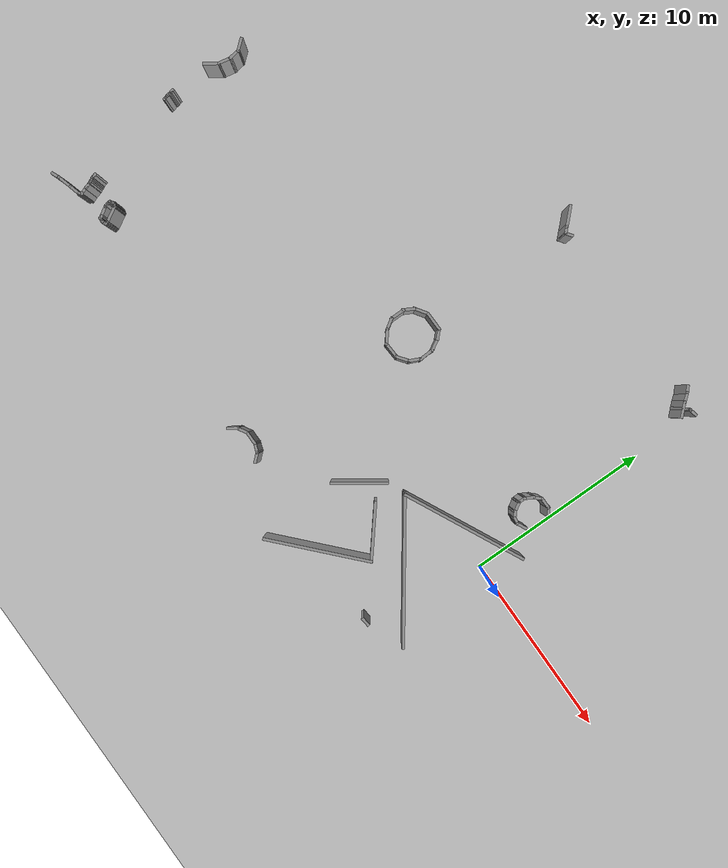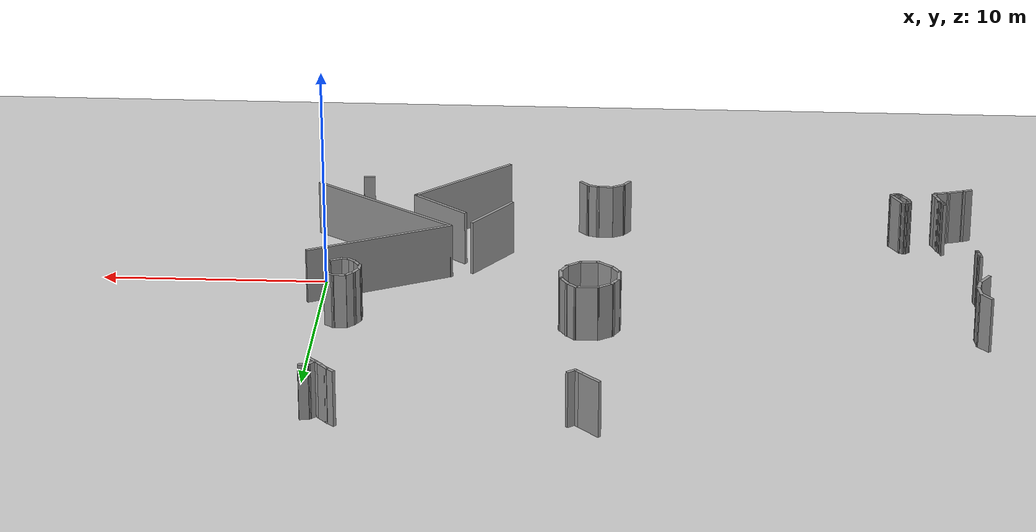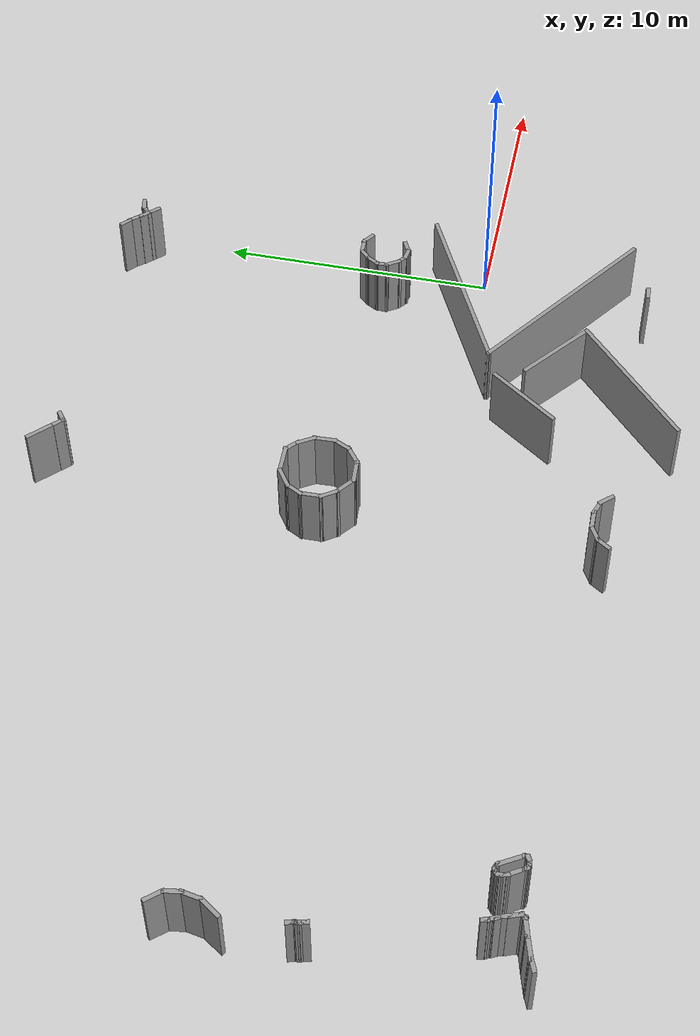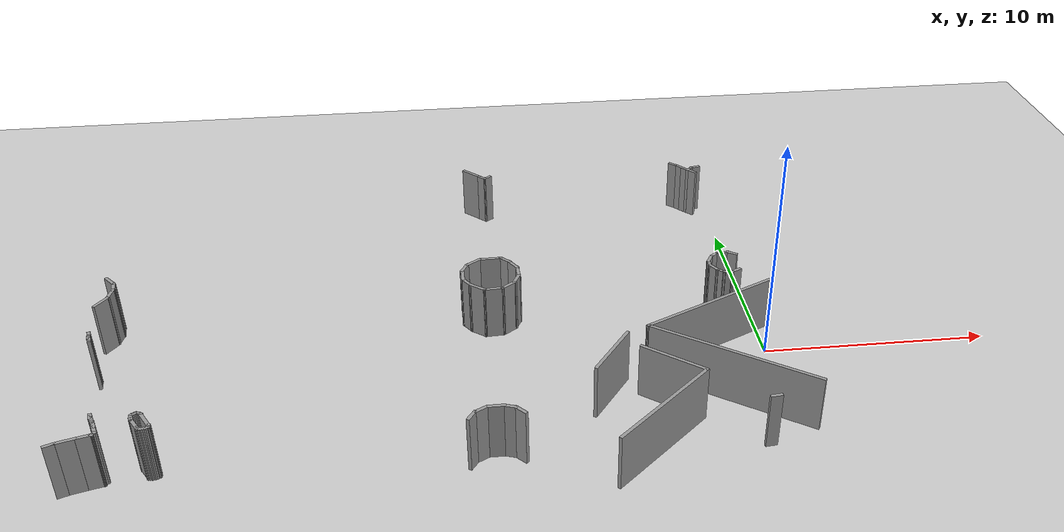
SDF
<sdf version="1.6">
 <world name="default">
  <model name="ground_plane">
   <static>1</static>
   <link name="link">
    <collision name="collision">
     <geometry><plane><normal>0 0 1</normal><size>100 100</size></plane></geometry>
     <surface><friction><ode><mu>100</mu><mu2>50</mu2></ode></friction></surface>
    </collision>
    <visual name="visual">
     <cast_shadows>0</cast_shadows>
     <geometry><plane><normal>0 0 1</normal><size>100 100</size></plane></geometry>
     <material>
      <script><uri>file://media/materials/scripts/gazebo.material</uri><name>Gazebo/Grey</name></script>
     </material>
    </visual>
   </link>
  </model>
  <model name="scene">
   <pose>1.8013 -1.70593 0 0 -0 0</pose>
   <link name="Wall_1002">
    <collision name="Wall_1002_Collision">
     <geometry><box><size>0.512288 0.15 2.5</size></box></geometry>
     <pose>0 0 1.25 0 -0 0</pose>
    </collision>
    <visual name="Wall_1002_Visual">
     <pose>0 0 1.25 0 -0 0</pose>
     <geometry><box><size>0.512288 0.15 2.5</size></box></geometry>
     <material>
      <script><uri>file://media/materials/scripts/gazebo.material</uri><name>Gazebo/Grey</name></script>
      <ambient>1 1 1 1</ambient>
     </material>
    </visual>
    <pose>-3.19308 -4.55312 0 0 -0 0.112678</pose>
   </link>
   <link name="Wall_1008">
    <collision name="Wall_1008_Collision">
     <geometry><box><size>0.651968 0.15 2.5</size></box></geometry>
     <pose>0 0 1.25 0 -0 0</pose>
    </collision>
    <visual name="Wall_1008_Visual">
     <pose>0 0 1.25 0 -0 0</pose>
     <geometry><box><size>0.651968 0.15 2.5</size></box></geometry>
     <material>
      <script><uri>file://media/materials/scripts/gazebo.material</uri><name>Gazebo/Grey</name></script>
      <ambient>1 1 1 1</ambient>
     </material>
    </visual>
    <pose>-2.86264 6.28005 0 0 -0 0.018912</pose>
   </link>
   <link name="Wall_1009">
    <collision name="Wall_1009_Collision">
     <geometry><box><size>0.560126 0.15 2.5</size></box></geometry>
     <pose>0 0 1.25 0 -0 0</pose>
    </collision>
    <visual name="Wall_1009_Visual">
     <pose>0 0 1.25 0 -0 0</pose>
     <geometry><box><size>0.560126 0.15 2.5</size></box></geometry>
     <material>
      <script><uri>file://media/materials/scripts/gazebo.material</uri><name>Gazebo/Grey</name></script>
      <ambient>1 1 1 1</ambient>
     </material>
    </visual>
    <pose>-2.45331 6.16705 0 0 0 -0.611634</pose>
   </link>
   <link name="Wall_1013">
    <collision name="Wall_1013_Collision">
     <geometry><box><size>0.595143 0.15 2.5</size></box></geometry>
     <pose>0 0 1.25 0 -0 0</pose>
    </collision>
    <visual name="Wall_1013_Visual">
     <pose>0 0 1.25 0 -0 0</pose>
     <geometry><box><size>0.595143 0.15 2.5</size></box></geometry>
     <material>
      <script><uri>file://media/materials/scripts/gazebo.material</uri><name>Gazebo/Grey</name></script>
      <ambient>1 1 1 1</ambient>
     </material>
    </visual>
    <pose>-2.62187 4.65356 0 0 0 -2.67745</pose>
   </link>
   <link name="Wall_1014">
    <collision name="Wall_1014_Collision">
     <geometry><box><size>0.497973 0.15 2.5</size></box></geometry>
     <pose>0 0 1.25 0 -0 0</pose>
    </collision>
    <visual name="Wall_1014_Visual">
     <pose>0 0 1.25 0 -0 0</pose>
     <geometry><box><size>0.497973 0.15 2.5</size></box></geometry>
     <material>
      <script><uri>file://media/materials/scripts/gazebo.material</uri><name>Gazebo/Grey</name></script>
      <ambient>1 1 1 1</ambient>
     </material>
    </visual>
    <pose>-2.98346 4.57976 0 0 -0 2.99259</pose>
   </link>
   <link name="Wall_1015">
    <collision name="Wall_1015_Collision">
     <geometry><box><size>0.476252 0.15 2.5</size></box></geometry>
     <pose>0 0 1.25 0 -0 0</pose>
    </collision>
    <visual name="Wall_1015_Visual">
     <pose>0 0 1.25 0 -0 0</pose>
     <geometry><box><size>0.476252 0.15 2.5</size></box></geometry>
     <material>
      <script><uri>file://media/materials/scripts/gazebo.material</uri><name>Gazebo/Grey</name></script>
      <ambient>1 1 1 1</ambient>
     </material>
    </visual>
    <pose>-3.28061 4.70079 0 0 -0 2.44473</pose>
   </link>
   <link name="Wall_1016">
    <collision name="Wall_1016_Collision">
     <geometry><box><size>0.634342 0.15 2.5</size></box></geometry>
     <pose>0 0 1.25 0 -0 0</pose>
    </collision>
    <visual name="Wall_1016_Visual">
     <pose>0 0 1.25 0 -0 0</pose>
     <geometry><box><size>0.634342 0.15 2.5</size></box></geometry>
     <material>
      <script><uri>file://media/materials/scripts/gazebo.material</uri><name>Gazebo/Grey</name></script>
      <ambient>1 1 1 1</ambient>
     </material>
    </visual>
    <pose>-3.54128 5.01225 0 0 -0 2.11837</pose>
   </link>
   <link name="Wall_1017">
    <collision name="Wall_1017_Collision">
     <geometry><box><size>0.505913 0.15 2.5</size></box></geometry>
     <pose>0 0 1.25 0 -0 0</pose>
    </collision>
    <visual name="Wall_1017_Visual">
     <pose>0 0 1.25 0 -0 0</pose>
     <geometry><box><size>0.505913 0.15 2.5</size></box></geometry>
     <material>
      <script><uri>file://media/materials/scripts/gazebo.material</uri><name>Gazebo/Grey</name></script>
      <ambient>1 1 1 1</ambient>
     </material>
    </visual>
    <pose>-3.67601 5.39697 0 0 -0 1.5661</pose>
   </link>
   <link name="Wall_1019">
    <collision name="Wall_1019_Collision">
     <geometry><box><size>0.587128 0.15 2.5</size></box></geometry>
     <pose>0 0 1.25 0 -0 0</pose>
    </collision>
    <visual name="Wall_1019_Visual">
     <pose>0 0 1.25 0 -0 0</pose>
     <geometry><box><size>0.587128 0.15 2.5</size></box></geometry>
     <material>
      <script><uri>file://media/materials/scripts/gazebo.material</uri><name>Gazebo/Grey</name></script>
      <ambient>1 1 1 1</ambient>
     </material>
    </visual>
    <pose>-3.56836 5.7751 0 0 -0 1.06017</pose>
   </link>
   <link name="Wall_1020">
    <collision name="Wall_1020_Collision">
     <geometry><box><size>0.536264 0.15 2.5</size></box></geometry>
     <pose>0 0 1.25 0 -0 0</pose>
    </collision>
    <visual name="Wall_1020_Visual">
     <pose>0 0 1.25 0 -0 0</pose>
     <geometry><box><size>0.536264 0.15 2.5</size></box></geometry>
     <material>
      <script><uri>file://media/materials/scripts/gazebo.material</uri><name>Gazebo/Grey</name></script>
      <ambient>1 1 1 1</ambient>
     </material>
    </visual>
    <pose>-3.32865 6.09652 0 0 -0 0.812245</pose>
   </link>
   <link name="Wall_1024">
    <collision name="Wall_1024_Collision">
     <geometry><box><size>1.09202 0.15 2.5</size></box></geometry>
     <pose>0 0 1.25 0 -0 0</pose>
    </collision>
    <visual name="Wall_1024_Visual">
     <pose>0 0 1.25 0 -0 0</pose>
     <geometry><box><size>1.09202 0.15 2.5</size></box></geometry>
     <material>
      <script><uri>file://media/materials/scripts/gazebo.material</uri><name>Gazebo/Grey</name></script>
      <ambient>1 1 1 1</ambient>
     </material>
    </visual>
    <pose>-13.5874 6.95876 0 0 -0 0.020155</pose>
   </link>
   <link name="Wall_1025">
    <collision name="Wall_1025_Collision">
     <geometry><box><size>0.652654 0.15 2.5</size></box></geometry>
     <pose>0 0 1.25 0 -0 0</pose>
    </collision>
    <visual name="Wall_1025_Visual">
     <pose>0 0 1.25 0 -0 0</pose>
     <geometry><box><size>0.652654 0.15 2.5</size></box></geometry>
     <material>
      <script><uri>file://media/materials/scripts/gazebo.material</uri><name>Gazebo/Grey</name></script>
      <ambient>1 1 1 1</ambient>
     </material>
    </visual>
    <pose>-12.9367 6.78315 0 0 0 -0.773619</pose>
   </link>
   <link name="Wall_1026">
    <collision name="Wall_1026_Collision">
     <geometry><box><size>0.767824 0.15 2.5</size></box></geometry>
     <pose>0 0 1.25 0 -0 0</pose>
    </collision>
    <visual name="Wall_1026_Visual">
     <pose>0 0 1.25 0 -0 0</pose>
     <geometry><box><size>0.767824 0.15 2.5</size></box></geometry>
     <material>
      <script><uri>file://media/materials/scripts/gazebo.material</uri><name>Gazebo/Grey</name></script>
      <ambient>1 1 1 1</ambient>
     </material>
    </visual>
    <pose>-12.6069 6.34298 0 0 0 -1.02827</pose>
   </link>
   <link name="Wall_1027">
    <collision name="Wall_1027_Collision">
     <geometry><box><size>0.886223 0.15 2.5</size></box></geometry>
     <pose>0 0 1.25 0 -0 0</pose>
    </collision>
    <visual name="Wall_1027_Visual">
     <pose>0 0 1.25 0 -0 0</pose>
     <geometry><box><size>0.886223 0.15 2.5</size></box></geometry>
     <material>
      <script><uri>file://media/materials/scripts/gazebo.material</uri><name>Gazebo/Grey</name></script>
      <ambient>1 1 1 1</ambient>
     </material>
    </visual>
    <pose>-12.4323 5.72012 0 0 0 -1.52984</pose>
   </link>
   <link name="Wall_1028">
    <collision name="Wall_1028_Collision">
     <geometry><box><size>0.730781 0.15 2.5</size></box></geometry>
     <pose>0 0 1.25 0 -0 0</pose>
    </collision>
    <visual name="Wall_1028_Visual">
     <pose>0 0 1.25 0 -0 0</pose>
     <geometry><box><size>0.730781 0.15 2.5</size></box></geometry>
     <material>
      <script><uri>file://media/materials/scripts/gazebo.material</uri><name>Gazebo/Grey</name></script>
      <ambient>1 1 1 1</ambient>
     </material>
    </visual>
    <pose>-12.5504 5.08958 0 0 0 -2.01077</pose>
   </link>
   <link name="Wall_1029">
    <collision name="Wall_1029_Collision">
     <geometry><box><size>0.844092 0.15 2.5</size></box></geometry>
     <pose>0 0 1.25 0 -0 0</pose>
    </collision>
    <visual name="Wall_1029_Visual">
     <pose>0 0 1.25 0 -0 0</pose>
     <geometry><box><size>0.844092 0.15 2.5</size></box></geometry>
     <material>
      <script><uri>file://media/materials/scripts/gazebo.material</uri><name>Gazebo/Grey</name></script>
      <ambient>1 1 1 1</ambient>
     </material>
    </visual>
    <pose>-12.9416 4.61776 0 0 0 -2.49497</pose>
   </link>
   <link name="Wall_1030">
    <collision name="Wall_1030_Collision">
     <geometry><box><size>0.938706 0.15 2.5</size></box></geometry>
     <pose>0 0 1.25 0 -0 0</pose>
    </collision>
    <visual name="Wall_1030_Visual">
     <pose>0 0 1.25 0 -0 0</pose>
     <geometry><box><size>0.938706 0.15 2.5</size></box></geometry>
     <material>
      <script><uri>file://media/materials/scripts/gazebo.material</uri><name>Gazebo/Grey</name></script>
      <ambient>1 1 1 1</ambient>
     </material>
    </visual>
    <pose>-13.6218 4.38521 0 0 0 -3.08209</pose>
   </link>
   <link name="Wall_1031">
    <collision name="Wall_1031_Collision">
     <geometry><box><size>0.896759 0.15 2.5</size></box></geometry>
     <pose>0 0 1.25 0 -0 0</pose>
    </collision>
    <visual name="Wall_1031_Visual">
     <pose>0 0 1.25 0 -0 0</pose>
     <geometry><box><size>0.896759 0.15 2.5</size></box></geometry>
     <material>
      <script><uri>file://media/materials/scripts/gazebo.material</uri><name>Gazebo/Grey</name></script>
      <ambient>1 1 1 1</ambient>
     </material>
    </visual>
    <pose>-14.317 4.59433 0 0 -0 2.4692</pose>
   </link>
   <link name="Wall_1032">
    <collision name="Wall_1032_Collision">
     <geometry><box><size>0.739141 0.15 2.5</size></box></geometry>
     <pose>0 0 1.25 0 -0 0</pose>
    </collision>
    <visual name="Wall_1032_Visual">
     <pose>0 0 1.25 0 -0 0</pose>
     <geometry><box><size>0.739141 0.15 2.5</size></box></geometry>
     <material>
      <script><uri>file://media/materials/scripts/gazebo.material</uri><name>Gazebo/Grey</name></script>
      <ambient>1 1 1 1</ambient>
     </material>
    </visual>
    <pose>-14.7794 5.07369 0 0 -0 2.14828</pose>
   </link>
   <link name="Wall_1033">
    <collision name="Wall_1033_Collision">
     <geometry><box><size>0.871473 0.15 2.5</size></box></geometry>
     <pose>0 0 1.25 0 -0 0</pose>
    </collision>
    <visual name="Wall_1033_Visual">
     <pose>0 0 1.25 0 -0 0</pose>
     <geometry><box><size>0.871473 0.15 2.5</size></box></geometry>
     <material>
      <script><uri>file://media/materials/scripts/gazebo.material</uri><name>Gazebo/Grey</name></script>
      <ambient>1 1 1 1</ambient>
     </material>
    </visual>
    <pose>-14.935 5.68121 0 0 -0 1.58254</pose>
   </link>
   <link name="Wall_1034">
    <collision name="Wall_1034_Collision">
     <geometry><box><size>0.716222 0.15 2.5</size></box></geometry>
     <pose>0 0 1.25 0 -0 0</pose>
    </collision>
    <visual name="Wall_1034_Visual">
     <pose>0 0 1.25 0 -0 0</pose>
     <geometry><box><size>0.716222 0.15 2.5</size></box></geometry>
     <material>
      <script><uri>file://media/materials/scripts/gazebo.material</uri><name>Gazebo/Grey</name></script>
      <ambient>1 1 1 1</ambient>
     </material>
    </visual>
    <pose>-14.8147 6.29132 0 0 -0 1.07786</pose>
   </link>
   <link name="Wall_1035">
    <collision name="Wall_1035_Collision">
     <geometry><box><size>0.862117 0.15 2.5</size></box></geometry>
     <pose>0 0 1.25 0 -0 0</pose>
    </collision>
    <visual name="Wall_1035_Visual">
     <pose>0 0 1.25 0 -0 0</pose>
     <geometry><box><size>0.862117 0.15 2.5</size></box></geometry>
     <material>
      <script><uri>file://media/materials/scripts/gazebo.material</uri><name>Gazebo/Grey</name></script>
      <ambient>1 1 1 1</ambient>
     </material>
    </visual>
    <pose>-14.3968 6.74241 0 0 -0 0.602178</pose>
   </link>
   <link name="Wall_1039">
    <collision name="Wall_1039_Collision">
     <geometry><box><size>0.75 0.15 2.5</size></box></geometry>
     <pose>0 0 1.25 0 -0 0</pose>
    </collision>
    <visual name="Wall_1039_Visual">
     <pose>0 0 1.25 0 -0 0</pose>
     <geometry><box><size>0.75 0.15 2.5</size></box></geometry>
     <material>
      <script><uri>file://media/materials/scripts/gazebo.material</uri><name>Gazebo/Grey</name></script>
      <ambient>1 1 1 1</ambient>
     </material>
    </visual>
    <pose>-14.0601 -3.93279 0 0 -0 0</pose>
   </link>
   <link name="Wall_1040">
    <collision name="Wall_1040_Collision">
     <geometry><box><size>0.610594 0.15 2.5</size></box></geometry>
     <pose>0 0 1.25 0 -0 0</pose>
    </collision>
    <visual name="Wall_1040_Visual">
     <pose>0 0 1.25 0 -0 0</pose>
     <geometry><box><size>0.610594 0.15 2.5</size></box></geometry>
     <material>
      <script><uri>file://media/materials/scripts/gazebo.material</uri><name>Gazebo/Grey</name></script>
      <ambient>1 1 1 1</ambient>
     </material>
    </visual>
    <pose>-13.5436 -4.01131 0 0 0 -0.347913</pose>
   </link>
   <link name="Wall_1041">
    <collision name="Wall_1041_Collision">
     <geometry><box><size>0.643015 0.15 2.5</size></box></geometry>
     <pose>0 0 1.25 0 -0 0</pose>
    </collision>
    <visual name="Wall_1041_Visual">
     <pose>0 0 1.25 0 -0 0</pose>
     <geometry><box><size>0.643015 0.15 2.5</size></box></geometry>
     <material>
      <script><uri>file://media/materials/scripts/gazebo.material</uri><name>Gazebo/Grey</name></script>
      <ambient>1 1 1 1</ambient>
     </material>
    </visual>
    <pose>-13.1518 -4.27225 0 0 0 -0.833122</pose>
   </link>
   <link name="Wall_1053">
    <collision name="Wall_1053_Collision">
     <geometry><box><size>0.626331 0.15 2.5</size></box></geometry>
     <pose>0 0 1.25 0 -0 0</pose>
    </collision>
    <visual name="Wall_1053_Visual">
     <pose>0 0 1.25 0 -0 0</pose>
     <geometry><box><size>0.626331 0.15 2.5</size></box></geometry>
     <material>
      <script><uri>file://media/materials/scripts/gazebo.material</uri><name>Gazebo/Grey</name></script>
      <ambient>1 1 1 1</ambient>
     </material>
    </visual>
    <pose>-15.0325 -4.40458 0 0 -0 0.989265</pose>
   </link>
   <link name="Wall_1054">
    <collision name="Wall_1054_Collision">
     <geometry><box><size>0.644301 0.15 2.5</size></box></geometry>
     <pose>0 0 1.25 0 -0 0</pose>
    </collision>
    <visual name="Wall_1054_Visual">
     <pose>0 0 1.25 0 -0 0</pose>
     <geometry><box><size>0.644301 0.15 2.5</size></box></geometry>
     <material>
      <script><uri>file://media/materials/scripts/gazebo.material</uri><name>Gazebo/Grey</name></script>
      <ambient>1 1 1 1</ambient>
     </material>
    </visual>
    <pose>-14.6781 -4.08216 0 0 -0 0.522787</pose>
   </link>
   <link name="Wall_1079">
    <collision name="Wall_1079_Collision">
     <geometry><box><size>0.762468 0.15 2.5</size></box></geometry>
     <pose>0 0 1.25 0 -0 0</pose>
    </collision>
    <visual name="Wall_1079_Visual">
     <pose>0 0 1.25 0 -0 0</pose>
     <geometry><box><size>0.762468 0.15 2.5</size></box></geometry>
     <material>
      <script><uri>file://media/materials/scripts/gazebo.material</uri><name>Gazebo/Grey</name></script>
      <ambient>1 1 1 1</ambient>
     </material>
    </visual>
    <pose>-30.6052 7.00854 0 0 0 -0.870597</pose>
   </link>
   <link name="Wall_1080">
    <collision name="Wall_1080_Collision">
     <geometry><box><size>0.690732 0.15 2.5</size></box></geometry>
     <pose>0 0 1.25 0 -0 0</pose>
    </collision>
    <visual name="Wall_1080_Visual">
     <pose>0 0 1.25 0 -0 0</pose>
     <geometry><box><size>0.690732 0.15 2.5</size></box></geometry>
     <material>
      <script><uri>file://media/materials/scripts/gazebo.material</uri><name>Gazebo/Grey</name></script>
      <ambient>1 1 1 1</ambient>
     </material>
    </visual>
    <pose>-30.3661 6.49054 0 0 0 -1.41585</pose>
   </link>
   <link name="Wall_1081">
    <collision name="Wall_1081_Collision">
     <geometry><box><size>0.780619 0.15 2.5</size></box></geometry>
     <pose>0 0 1.25 0 -0 0</pose>
    </collision>
    <visual name="Wall_1081_Visual">
     <pose>0 0 1.25 0 -0 0</pose>
     <geometry><box><size>0.780619 0.15 2.5</size></box></geometry>
     <material>
      <script><uri>file://media/materials/scripts/gazebo.material</uri><name>Gazebo/Grey</name></script>
      <ambient>1 1 1 1</ambient>
     </material>
    </visual>
    <pose>-30.3826 5.93021 0 0 0 -1.75634</pose>
   </link>
   <link name="Wall_1082">
    <collision name="Wall_1082_Collision">
     <geometry><box><size>0.896261 0.15 2.5</size></box></geometry>
     <pose>0 0 1.25 0 -0 0</pose>
    </collision>
    <visual name="Wall_1082_Visual">
     <pose>0 0 1.25 0 -0 0</pose>
     <geometry><box><size>0.896261 0.15 2.5</size></box></geometry>
     <material>
      <script><uri>file://media/materials/scripts/gazebo.material</uri><name>Gazebo/Grey</name></script>
      <ambient>1 1 1 1</ambient>
     </material>
    </visual>
    <pose>-30.6504 5.295 0 0 0 -2.16766</pose>
   </link>
   <link name="Wall_449">
    <collision name="Wall_449_Collision">
     <geometry><box><size>0.50892 0.15 2.5</size></box></geometry>
     <pose>0 0 1.25 0 -0 0</pose>
    </collision>
    <visual name="Wall_449_Visual">
     <pose>0 0 1.25 0 -0 0</pose>
     <geometry><box><size>0.50892 0.15 2.5</size></box></geometry>
     <material>
      <script><uri>file://media/materials/scripts/gazebo.material</uri><name>Gazebo/Grey</name></script>
      <ambient>1 1 1 1</ambient>
     </material>
    </visual>
    <pose>-30.5724 -4.35197 0 0 -0 0.390424</pose>
   </link>
   <link name="Wall_450">
    <collision name="Wall_450_Collision">
     <geometry><box><size>0.885292 0.15 2.5</size></box></geometry>
     <pose>0 0 1.25 0 -0 0</pose>
    </collision>
    <visual name="Wall_450_Visual">
     <pose>0 0 1.25 0 -0 0</pose>
     <geometry><box><size>0.885292 0.15 2.5</size></box></geometry>
     <material>
      <script><uri>file://media/materials/scripts/gazebo.material</uri><name>Gazebo/Grey</name></script>
      <ambient>1 1 1 1</ambient>
     </material>
    </visual>
    <pose>-30.0637 -4.17889 0 0 -0 0.289018</pose>
   </link>
   <link name="Wall_452">
    <collision name="Wall_452_Collision">
     <geometry><box><size>0.15 0.15 2.5</size></box></geometry>
     <pose>0 0 1.25 0 -0 0</pose>
    </collision>
    <visual name="Wall_452_Visual">
     <pose>0 0 1.25 0 -0 0</pose>
     <geometry><box><size>0.15 0.15 2.5</size></box></geometry>
     <material>
      <script><uri>file://media/materials/scripts/gazebo.material</uri><name>Gazebo/Grey</name></script>
      <ambient>1 1 1 1</ambient>
     </material>
    </visual>
    <pose>-29.1317 -3.91882 0 0 -0 0</pose>
   </link>
   <link name="Wall_454">
    <collision name="Wall_454_Collision">
     <geometry><box><size>0.75 0.15 2.5</size></box></geometry>
     <pose>0 0 1.25 0 -0 0</pose>
    </collision>
    <visual name="Wall_454_Visual">
     <pose>0 0 1.25 0 -0 0</pose>
     <geometry><box><size>0.75 0.15 2.5</size></box></geometry>
     <material>
      <script><uri>file://media/materials/scripts/gazebo.material</uri><name>Gazebo/Grey</name></script>
      <ambient>1 1 1 1</ambient>
     </material>
    </visual>
    <pose>-29.4215 -3.99646 0 0 -0 0.261799</pose>
   </link>
   <link name="Wall_474">
    <collision name="Wall_474_Collision">
     <geometry><box><size>0.294371 0.15 2.5</size></box></geometry>
     <pose>0 0 1.25 0 -0 0</pose>
    </collision>
    <visual name="Wall_474_Visual">
     <pose>0 0 1.25 0 -0 0</pose>
     <geometry><box><size>0.294371 0.15 2.5</size></box></geometry>
     <material>
      <script><uri>file://media/materials/scripts/gazebo.material</uri><name>Gazebo/Grey</name></script>
      <ambient>1 1 1 1</ambient>
     </material>
    </visual>
    <pose>-29.0922 -3.85842 0 0 -0 0.991292</pose>
   </link>
   <link name="Wall_478">
    <collision name="Wall_478_Collision">
     <geometry><box><size>0.25 0.15 2.5</size></box></geometry>
     <pose>0 0 1.25 0 -0 0</pose>
    </collision>
    <visual name="Wall_478_Visual">
     <pose>0 0 1.25 0 -0 0</pose>
     <geometry><box><size>0.25 0.15 2.5</size></box></geometry>
     <material>
      <script><uri>file://media/materials/scripts/gazebo.material</uri><name>Gazebo/Grey</name></script>
      <ambient>1 1 1 1</ambient>
     </material>
    </visual>
    <pose>-29.4401 -2.7414 0 0 0 -1.309</pose>
   </link>
   <link name="Wall_479">
    <collision name="Wall_479_Collision">
     <geometry><box><size>0.25 0.15 2.5</size></box></geometry>
     <pose>0 0 1.25 0 -0 0</pose>
    </collision>
    <visual name="Wall_479_Visual">
     <pose>0 0 1.25 0 -0 0</pose>
     <geometry><box><size>0.25 0.15 2.5</size></box></geometry>
     <material>
      <script><uri>file://media/materials/scripts/gazebo.material</uri><name>Gazebo/Grey</name></script>
      <ambient>1 1 1 1</ambient>
     </material>
    </visual>
    <pose>-29.4142 -2.83799 0 0 0 -1.309</pose>
   </link>
   <link name="Wall_480">
    <collision name="Wall_480_Collision">
     <geometry><box><size>0.25 0.15 2.5</size></box></geometry>
     <pose>0 0 1.25 0 -0 0</pose>
    </collision>
    <visual name="Wall_480_Visual">
     <pose>0 0 1.25 0 -0 0</pose>
     <geometry><box><size>0.25 0.15 2.5</size></box></geometry>
     <material>
      <script><uri>file://media/materials/scripts/gazebo.material</uri><name>Gazebo/Grey</name></script>
      <ambient>1 1 1 1</ambient>
     </material>
    </visual>
    <pose>-29.3762 -2.92959 0 0 0 -1.0472</pose>
   </link>
   <link name="Wall_481">
    <collision name="Wall_481_Collision">
     <geometry><box><size>0.255561 0.15 2.5</size></box></geometry>
     <pose>0 0 1.25 0 -0 0</pose>
    </collision>
    <visual name="Wall_481_Visual">
     <pose>0 0 1.25 0 -0 0</pose>
     <geometry><box><size>0.255561 0.15 2.5</size></box></geometry>
     <material>
      <script><uri>file://media/materials/scripts/gazebo.material</uri><name>Gazebo/Grey</name></script>
      <ambient>1 1 1 1</ambient>
     </material>
    </visual>
    <pose>-29.3299 -3.02118 0 0 0 -1.15562</pose>
   </link>
   <link name="Wall_482">
    <collision name="Wall_482_Collision">
     <geometry><box><size>0.259196 0.15 2.5</size></box></geometry>
     <pose>0 0 1.25 0 -0 0</pose>
    </collision>
    <visual name="Wall_482_Visual">
     <pose>0 0 1.25 0 -0 0</pose>
     <geometry><box><size>0.259196 0.15 2.5</size></box></geometry>
     <material>
      <script><uri>file://media/materials/scripts/gazebo.material</uri><name>Gazebo/Grey</name></script>
      <ambient>1 1 1 1</ambient>
     </material>
    </visual>
    <pose>-29.2915 -3.11778 0 0 0 -1.0856</pose>
   </link>
   <link name="Wall_483">
    <collision name="Wall_483_Collision">
     <geometry><box><size>0.451896 0.15 2.5</size></box></geometry>
     <pose>0 0 1.25 0 -0 0</pose>
    </collision>
    <visual name="Wall_483_Visual">
     <pose>0 0 1.25 0 -0 0</pose>
     <geometry><box><size>0.451896 0.15 2.5</size></box></geometry>
     <material>
      <script><uri>file://media/materials/scripts/gazebo.material</uri><name>Gazebo/Grey</name></script>
      <ambient>1 1 1 1</ambient>
     </material>
    </visual>
    <pose>-29.2124 -3.31006 0 0 0 -1.26604</pose>
   </link>
   <link name="Wall_484">
    <collision name="Wall_484_Collision">
     <geometry><box><size>0.518128 0.15 2.5</size></box></geometry>
     <pose>0 0 1.25 0 -0 0</pose>
    </collision>
    <visual name="Wall_484_Visual">
     <pose>0 0 1.25 0 -0 0</pose>
     <geometry><box><size>0.518128 0.15 2.5</size></box></geometry>
     <material>
      <script><uri>file://media/materials/scripts/gazebo.material</uri><name>Gazebo/Grey</name></script>
      <ambient>1 1 1 1</ambient>
     </material>
    </visual>
    <pose>-29.1099 -3.62604 0 0 0 -1.20642</pose>
   </link>
   <link name="Wall_486">
    <collision name="Wall_486_Collision">
     <geometry><box><size>0.25 0.15 2.5</size></box></geometry>
     <pose>0 0 1.25 0 -0 0</pose>
    </collision>
    <visual name="Wall_486_Visual">
     <pose>0 0 1.25 0 -0 0</pose>
     <geometry><box><size>0.25 0.15 2.5</size></box></geometry>
     <material>
      <script><uri>file://media/materials/scripts/gazebo.material</uri><name>Gazebo/Grey</name></script>
      <ambient>1 1 1 1</ambient>
     </material>
    </visual>
    <pose>-27.5329 -3.69645 0 0 0 -1.0472</pose>
   </link>
   <link name="Wall_487">
    <collision name="Wall_487_Collision">
     <geometry><box><size>0.25 0.15 2.5</size></box></geometry>
     <pose>0 0 1.25 0 -0 0</pose>
    </collision>
    <visual name="Wall_487_Visual">
     <pose>0 0 1.25 0 -0 0</pose>
     <geometry><box><size>0.25 0.15 2.5</size></box></geometry>
     <material>
      <script><uri>file://media/materials/scripts/gazebo.material</uri><name>Gazebo/Grey</name></script>
      <ambient>1 1 1 1</ambient>
     </material>
    </visual>
    <pose>-27.4596 -3.7527 0 0 0 -0.261799</pose>
   </link>
   <link name="Wall_488">
    <collision name="Wall_488_Collision">
     <geometry><box><size>0.25 0.15 2.5</size></box></geometry>
     <pose>0 0 1.25 0 -0 0</pose>
    </collision>
    <visual name="Wall_488_Visual">
     <pose>0 0 1.25 0 -0 0</pose>
     <geometry><box><size>0.25 0.15 2.5</size></box></geometry>
     <material>
      <script><uri>file://media/materials/scripts/gazebo.material</uri><name>Gazebo/Grey</name></script>
      <ambient>1 1 1 1</ambient>
     </material>
    </visual>
    <pose>-27.3613 -3.76564 0 0 -0 0</pose>
   </link>
   <link name="Wall_489">
    <collision name="Wall_489_Collision">
     <geometry><box><size>0.25 0.15 2.5</size></box></geometry>
     <pose>0 0 1.25 0 -0 0</pose>
    </collision>
    <visual name="Wall_489_Visual">
     <pose>0 0 1.25 0 -0 0</pose>
     <geometry><box><size>0.25 0.15 2.5</size></box></geometry>
     <material>
      <script><uri>file://media/materials/scripts/gazebo.material</uri><name>Gazebo/Grey</name></script>
      <ambient>1 1 1 1</ambient>
     </material>
    </visual>
    <pose>-27.263 -3.7527 0 0 -0 0.261799</pose>
   </link>
   <link name="Wall_490">
    <collision name="Wall_490_Collision">
     <geometry><box><size>0.25 0.15 2.5</size></box></geometry>
     <pose>0 0 1.25 0 -0 0</pose>
    </collision>
    <visual name="Wall_490_Visual">
     <pose>0 0 1.25 0 -0 0</pose>
     <geometry><box><size>0.25 0.15 2.5</size></box></geometry>
     <material>
      <script><uri>file://media/materials/scripts/gazebo.material</uri><name>Gazebo/Grey</name></script>
      <ambient>1 1 1 1</ambient>
     </material>
    </visual>
    <pose>-27.1715 -3.71475 0 0 -0 0.523599</pose>
   </link>
   <link name="Wall_491">
    <collision name="Wall_491_Collision">
     <geometry><box><size>0.25 0.15 2.5</size></box></geometry>
     <pose>0 0 1.25 0 -0 0</pose>
    </collision>
    <visual name="Wall_491_Visual">
     <pose>0 0 1.25 0 -0 0</pose>
     <geometry><box><size>0.25 0.15 2.5</size></box></geometry>
     <material>
      <script><uri>file://media/materials/scripts/gazebo.material</uri><name>Gazebo/Grey</name></script>
      <ambient>1 1 1 1</ambient>
     </material>
    </visual>
    <pose>-27.1281 -3.63976 0 0 -0 1.5708</pose>
   </link>
   <link name="Wall_492">
    <collision name="Wall_492_Collision">
     <geometry><box><size>1 0.15 2.5</size></box></geometry>
     <pose>0 0 1.25 0 -0 0</pose>
    </collision>
    <visual name="Wall_492_Visual">
     <pose>0 0 1.25 0 -0 0</pose>
     <geometry><box><size>1 0.15 2.5</size></box></geometry>
     <material>
      <script><uri>file://media/materials/scripts/gazebo.material</uri><name>Gazebo/Grey</name></script>
      <ambient>1 1 1 1</ambient>
     </material>
    </visual>
    <pose>-27.3406 -3.22169 0 0 -0 2.0944</pose>
   </link>
   <link name="Wall_493">
    <collision name="Wall_493_Collision">
     <geometry><box><size>0.25 0.15 2.5</size></box></geometry>
     <pose>0 0 1.25 0 -0 0</pose>
    </collision>
    <visual name="Wall_493_Visual">
     <pose>0 0 1.25 0 -0 0</pose>
     <geometry><box><size>0.25 0.15 2.5</size></box></geometry>
     <material>
      <script><uri>file://media/materials/scripts/gazebo.material</uri><name>Gazebo/Grey</name></script>
      <ambient>1 1 1 1</ambient>
     </material>
    </visual>
    <pose>-27.5964 -2.82863 0 0 -0 2.61799</pose>
   </link>
   <link name="Wall_494">
    <collision name="Wall_494_Collision">
     <geometry><box><size>0.25 0.15 2.5</size></box></geometry>
     <pose>0 0 1.25 0 -0 0</pose>
    </collision>
    <visual name="Wall_494_Visual">
     <pose>0 0 1.25 0 -0 0</pose>
     <geometry><box><size>0.25 0.15 2.5</size></box></geometry>
     <material>
      <script><uri>file://media/materials/scripts/gazebo.material</uri><name>Gazebo/Grey</name></script>
      <ambient>1 1 1 1</ambient>
     </material>
    </visual>
    <pose>-27.688 -2.79069 0 0 -0 2.87979</pose>
   </link>
   <link name="Wall_495">
    <collision name="Wall_495_Collision">
     <geometry><box><size>0.25 0.15 2.5</size></box></geometry>
     <pose>0 0 1.25 0 -0 0</pose>
    </collision>
    <visual name="Wall_495_Visual">
     <pose>0 0 1.25 0 -0 0</pose>
     <geometry><box><size>0.25 0.15 2.5</size></box></geometry>
     <material>
      <script><uri>file://media/materials/scripts/gazebo.material</uri><name>Gazebo/Grey</name></script>
      <ambient>1 1 1 1</ambient>
     </material>
    </visual>
    <pose>-27.7796 -2.80275 0 0 0 -2.61799</pose>
   </link>
   <link name="Wall_496">
    <collision name="Wall_496_Collision">
     <geometry><box><size>0.25 0.15 2.5</size></box></geometry>
     <pose>0 0 1.25 0 -0 0</pose>
    </collision>
    <visual name="Wall_496_Visual">
     <pose>0 0 1.25 0 -0 0</pose>
     <geometry><box><size>0.25 0.15 2.5</size></box></geometry>
     <material>
      <script><uri>file://media/materials/scripts/gazebo.material</uri><name>Gazebo/Grey</name></script>
      <ambient>1 1 1 1</ambient>
     </material>
    </visual>
    <pose>-27.8583 -2.86311 0 0 0 -2.35619</pose>
   </link>
   <link name="Wall_497">
    <collision name="Wall_497_Collision">
     <geometry><box><size>0.25 0.15 2.5</size></box></geometry>
     <pose>0 0 1.25 0 -0 0</pose>
    </collision>
    <visual name="Wall_497_Visual">
     <pose>0 0 1.25 0 -0 0</pose>
     <geometry><box><size>0.25 0.15 2.5</size></box></geometry>
     <material>
      <script><uri>file://media/materials/scripts/gazebo.material</uri><name>Gazebo/Grey</name></script>
      <ambient>1 1 1 1</ambient>
     </material>
    </visual>
    <pose>-27.8937 -2.94846 0 0 0 -1.5708</pose>
   </link>
   <link name="Wall_498">
    <collision name="Wall_498_Collision">
     <geometry><box><size>0.25 0.15 2.5</size></box></geometry>
     <pose>0 0 1.25 0 -0 0</pose>
    </collision>
    <visual name="Wall_498_Visual">
     <pose>0 0 1.25 0 -0 0</pose>
     <geometry><box><size>0.25 0.15 2.5</size></box></geometry>
     <material>
      <script><uri>file://media/materials/scripts/gazebo.material</uri><name>Gazebo/Grey</name></script>
      <ambient>1 1 1 1</ambient>
     </material>
    </visual>
    <pose>-27.8807 -3.04676 0 0 0 -1.309</pose>
   </link>
   <link name="Wall_499">
    <collision name="Wall_499_Collision">
     <geometry><box><size>0.25 0.15 2.5</size></box></geometry>
     <pose>0 0 1.25 0 -0 0</pose>
    </collision>
    <visual name="Wall_499_Visual">
     <pose>0 0 1.25 0 -0 0</pose>
     <geometry><box><size>0.25 0.15 2.5</size></box></geometry>
     <material>
      <script><uri>file://media/materials/scripts/gazebo.material</uri><name>Gazebo/Grey</name></script>
      <ambient>1 1 1 1</ambient>
     </material>
    </visual>
    <pose>-27.8548 -3.14335 0 0 0 -1.309</pose>
   </link>
   <link name="Wall_500">
    <collision name="Wall_500_Collision">
     <geometry><box><size>0.691866 0.15 2.5</size></box></geometry>
     <pose>0 0 1.25 0 -0 0</pose>
    </collision>
    <visual name="Wall_500_Visual">
     <pose>0 0 1.25 0 -0 0</pose>
     <geometry><box><size>0.691866 0.15 2.5</size></box></geometry>
     <material>
      <script><uri>file://media/materials/scripts/gazebo.material</uri><name>Gazebo/Grey</name></script>
      <ambient>1 1 1 1</ambient>
     </material>
    </visual>
    <pose>-27.6999 -3.4224 0 0 0 -1.01921</pose>
   </link>
   <link name="Wall_523">
    <collision name="Wall_523_Collision">
     <geometry><box><size>0.25 0.15 2.5</size></box></geometry>
     <pose>0 0 1.25 0 -0 0</pose>
    </collision>
    <visual name="Wall_523_Visual">
     <pose>0 0 1.25 0 -0 0</pose>
     <geometry><box><size>0.25 0.15 2.5</size></box></geometry>
     <material>
      <script><uri>file://media/materials/scripts/gazebo.material</uri><name>Gazebo/Grey</name></script>
      <ambient>1 1 1 1</ambient>
     </material>
    </visual>
    <pose>-30.6613 2.88292 0 0 0 -1.309</pose>
   </link>
   <link name="Wall_524">
    <collision name="Wall_524_Collision">
     <geometry><box><size>0.25 0.15 2.5</size></box></geometry>
     <pose>0 0 1.25 0 -0 0</pose>
    </collision>
    <visual name="Wall_524_Visual">
     <pose>0 0 1.25 0 -0 0</pose>
     <geometry><box><size>0.25 0.15 2.5</size></box></geometry>
     <material>
      <script><uri>file://media/materials/scripts/gazebo.material</uri><name>Gazebo/Grey</name></script>
      <ambient>1 1 1 1</ambient>
     </material>
    </visual>
    <pose>-30.6354 2.78633 0 0 0 -1.309</pose>
   </link>
   <link name="Wall_525">
    <collision name="Wall_525_Collision">
     <geometry><box><size>0.25 0.15 2.5</size></box></geometry>
     <pose>0 0 1.25 0 -0 0</pose>
    </collision>
    <visual name="Wall_525_Visual">
     <pose>0 0 1.25 0 -0 0</pose>
     <geometry><box><size>0.25 0.15 2.5</size></box></geometry>
     <material>
      <script><uri>file://media/materials/scripts/gazebo.material</uri><name>Gazebo/Grey</name></script>
      <ambient>1 1 1 1</ambient>
     </material>
    </visual>
    <pose>-30.6225 2.68803 0 0 0 -1.5708</pose>
   </link>
   <link name="Wall_526">
    <collision name="Wall_526_Collision">
     <geometry><box><size>0.25 0.15 2.5</size></box></geometry>
     <pose>0 0 1.25 0 -0 0</pose>
    </collision>
    <visual name="Wall_526_Visual">
     <pose>0 0 1.25 0 -0 0</pose>
     <geometry><box><size>0.25 0.15 2.5</size></box></geometry>
     <material>
      <script><uri>file://media/materials/scripts/gazebo.material</uri><name>Gazebo/Grey</name></script>
      <ambient>1 1 1 1</ambient>
     </material>
    </visual>
    <pose>-30.6095 2.58974 0 0 0 -1.309</pose>
   </link>
   <link name="Wall_527">
    <collision name="Wall_527_Collision">
     <geometry><box><size>0.25 0.15 2.5</size></box></geometry>
     <pose>0 0 1.25 0 -0 0</pose>
    </collision>
    <visual name="Wall_527_Visual">
     <pose>0 0 1.25 0 -0 0</pose>
     <geometry><box><size>0.25 0.15 2.5</size></box></geometry>
     <material>
      <script><uri>file://media/materials/scripts/gazebo.material</uri><name>Gazebo/Grey</name></script>
      <ambient>1 1 1 1</ambient>
     </material>
    </visual>
    <pose>-30.5836 2.49314 0 0 0 -1.309</pose>
   </link>
   <link name="Wall_528">
    <collision name="Wall_528_Collision">
     <geometry><box><size>0.25 0.15 2.5</size></box></geometry>
     <pose>0 0 1.25 0 -0 0</pose>
    </collision>
    <visual name="Wall_528_Visual">
     <pose>0 0 1.25 0 -0 0</pose>
     <geometry><box><size>0.25 0.15 2.5</size></box></geometry>
     <material>
      <script><uri>file://media/materials/scripts/gazebo.material</uri><name>Gazebo/Grey</name></script>
      <ambient>1 1 1 1</ambient>
     </material>
    </visual>
    <pose>-30.5578 2.39655 0 0 0 -1.309</pose>
   </link>
   <link name="Wall_581">
    <collision name="Wall_581_Collision">
     <geometry><box><size>1.20614 0.15 2.5</size></box></geometry>
     <pose>0 0 1.25 0 -0 0</pose>
    </collision>
    <visual name="Wall_581_Visual">
     <pose>0 0 1.25 0 -0 0</pose>
     <geometry><box><size>1.20614 0.15 2.5</size></box></geometry>
     <material>
      <script><uri>file://media/materials/scripts/gazebo.material</uri><name>Gazebo/Grey</name></script>
      <ambient>1 1 1 1</ambient>
     </material>
    </visual>
    <pose>-14.0073 15.5616 0 0 0 -0.785373</pose>
   </link>
   <link name="Wall_587">
    <collision name="Wall_587_Collision">
     <geometry><box><size>0.5 0.15 2.5</size></box></geometry>
     <pose>0 0 1.25 0 -0 0</pose>
    </collision>
    <visual name="Wall_587_Visual">
     <pose>0 0 1.25 0 -0 0</pose>
     <geometry><box><size>0.5 0.15 2.5</size></box></geometry>
     <material>
      <script><uri>file://media/materials/scripts/gazebo.material</uri><name>Gazebo/Grey</name></script>
      <ambient>1 1 1 1</ambient>
     </material>
    </visual>
    <pose>-13.5197 15.0644 0 0 0 -0.785398</pose>
   </link>
   <link name="Wall_588">
    <collision name="Wall_588_Collision">
     <geometry><box><size>0.494942 0.15 2.5</size></box></geometry>
     <pose>0 0 1.25 0 -0 0</pose>
    </collision>
    <visual name="Wall_588_Visual">
     <pose>0 0 1.25 0 -0 0</pose>
     <geometry><box><size>0.494942 0.15 2.5</size></box></geometry>
     <material>
      <script><uri>file://media/materials/scripts/gazebo.material</uri><name>Gazebo/Grey</name></script>
      <ambient>1 1 1 1</ambient>
     </material>
    </visual>
    <pose>-13.2567 15.0425 0 0 -0 0.631777</pose>
   </link>
   <link name="Wall_691">
    <collision name="Wall_691_Collision">
     <geometry><box><size>0.910447 0.15 2.5</size></box></geometry>
     <pose>0 0 1.25 0 -0 0</pose>
    </collision>
    <visual name="Wall_691_Visual">
     <pose>0 0 1.25 0 -0 0</pose>
     <geometry><box><size>0.910447 0.15 2.5</size></box></geometry>
     <material>
      <script><uri>file://media/materials/scripts/gazebo.material</uri><name>Gazebo/Grey</name></script>
      <ambient>1 1 1 1</ambient>
     </material>
    </visual>
    <pose>-2.73954 14.667 0 0 -0 2.3275</pose>
   </link>
   <link name="Wall_692">
    <collision name="Wall_692_Collision">
     <geometry><box><size>0.635062 0.15 2.5</size></box></geometry>
     <pose>0 0 1.25 0 -0 0</pose>
    </collision>
    <visual name="Wall_692_Visual">
     <pose>0 0 1.25 0 -0 0</pose>
     <geometry><box><size>0.635062 0.15 2.5</size></box></geometry>
     <material>
      <script><uri>file://media/materials/scripts/gazebo.material</uri><name>Gazebo/Grey</name></script>
      <ambient>1 1 1 1</ambient>
     </material>
    </visual>
    <pose>-3.14652 15.1283 0 0 -0 2.27518</pose>
   </link>
   <link name="Wall_693">
    <collision name="Wall_693_Collision">
     <geometry><box><size>0.499114 0.15 2.5</size></box></geometry>
     <pose>0 0 1.25 0 -0 0</pose>
    </collision>
    <visual name="Wall_693_Visual">
     <pose>0 0 1.25 0 -0 0</pose>
     <geometry><box><size>0.499114 0.15 2.5</size></box></geometry>
     <material>
      <script><uri>file://media/materials/scripts/gazebo.material</uri><name>Gazebo/Grey</name></script>
      <ambient>1 1 1 1</ambient>
     </material>
    </visual>
    <pose>-3.43243 15.4197 0 0 -0 2.40119</pose>
   </link>
   <link name="Wall_709">
    <collision name="Wall_709_Collision">
     <geometry><box><size>0.521196 0.15 2.5</size></box></geometry>
     <pose>0 0 1.25 0 -0 0</pose>
    </collision>
    <visual name="Wall_709_Visual">
     <pose>0 0 1.25 0 -0 0</pose>
     <geometry><box><size>0.521196 0.15 2.5</size></box></geometry>
     <material>
      <script><uri>file://media/materials/scripts/gazebo.material</uri><name>Gazebo/Grey</name></script>
      <ambient>1 1 1 1</ambient>
     </material>
    </visual>
    <pose>-2.33915 14.9871 0 0 0 -2.91706</pose>
   </link>
   <link name="Wall_710">
    <collision name="Wall_710_Collision">
     <geometry><box><size>0.25 0.15 2.5</size></box></geometry>
     <pose>0 0 1.25 0 -0 0</pose>
    </collision>
    <visual name="Wall_710_Visual">
     <pose>0 0 1.25 0 -0 0</pose>
     <geometry><box><size>0.25 0.15 2.5</size></box></geometry>
     <material>
      <script><uri>file://media/materials/scripts/gazebo.material</uri><name>Gazebo/Grey</name></script>
      <ambient>1 1 1 1</ambient>
     </material>
    </visual>
    <pose>-2.56384 14.9104 0 0 0 -2.35619</pose>
   </link>
   <link name="Wall_712">
    <collision name="Wall_712_Collision">
     <geometry><box><size>0.5 0.15 2.5</size></box></geometry>
     <pose>0 0 1.25 0 -0 0</pose>
    </collision>
    <visual name="Wall_712_Visual">
     <pose>0 0 1.25 0 -0 0</pose>
     <geometry><box><size>0.5 0.15 2.5</size></box></geometry>
     <material>
      <script><uri>file://media/materials/scripts/gazebo.material</uri><name>Gazebo/Grey</name></script>
      <ambient>1 1 1 1</ambient>
     </material>
    </visual>
    <pose>-2.65223 14.8221 0 0 0 -2.35619</pose>
   </link>
   <link name="Wall_947">
    <collision name="Wall_947_Collision">
     <geometry><box><size>5.65538 0.15 2.5</size></box></geometry>
     <pose>0 0 1.25 0 -0 0</pose>
    </collision>
    <visual name="Wall_947_Visual">
     <pose>0 0 1.25 0 -0 0</pose>
     <geometry><box><size>5.65538 0.15 2.5</size></box></geometry>
     <material>
      <script><uri>file://media/materials/scripts/gazebo.material</uri><name>Gazebo/Grey</name></script>
      <ambient>1 1 1 1</ambient>
     </material>
    </visual>
    <pose>-7.54115 -4.45656 0 0 -0 0.748606</pose>
   </link>
   <link name="Wall_948">
    <collision name="Wall_948_Collision">
     <geometry><box><size>3.13554 0.15 2.5</size></box></geometry>
     <pose>0 0 1.25 0 -0 0</pose>
    </collision>
    <visual name="Wall_948_Visual">
     <pose>0 0 1.25 0 -0 0</pose>
     <geometry><box><size>3.13554 0.15 2.5</size></box></geometry>
     <material>
      <script><uri>file://media/materials/scripts/gazebo.material</uri><name>Gazebo/Grey</name></script>
      <ambient>1 1 1 1</ambient>
     </material>
    </visual>
    <pose>-6.68168 -1.621 0 0 -0 2.45789</pose>
   </link>
   <link name="Wall_956">
    <collision name="Wall_956_Collision">
     <geometry><box><size>2.95792 0.15 2.5</size></box></geometry>
     <pose>0 0 1.25 0 -0 0</pose>
    </collision>
    <visual name="Wall_956_Visual">
     <pose>0 0 1.25 0 -0 0</pose>
     <geometry><box><size>2.95792 0.15 2.5</size></box></geometry>
     <material>
      <script><uri>file://media/materials/scripts/gazebo.material</uri><name>Gazebo/Grey</name></script>
      <ambient>1 1 1 1</ambient>
     </material>
    </visual>
    <pose>-9.08494 -0.789173 0 0 0 -2.184</pose>
   </link>
   <link name="Wall_961">
    <collision name="Wall_961_Collision">
     <geometry><box><size>6.91028 0.15 2.5</size></box></geometry>
     <pose>0 0 1.25 0 -0 0</pose>
    </collision>
    <visual name="Wall_961_Visual">
     <pose>0 0 1.25 0 -0 0</pose>
     <geometry><box><size>6.91028 0.15 2.5</size></box></geometry>
     <material>
      <script><uri>file://media/materials/scripts/gazebo.material</uri><name>Gazebo/Grey</name></script>
      <ambient>1 1 1 1</ambient>
     </material>
    </visual>
    <pose>-4.2714 2.25434 0 0 -0 0.457952</pose>
   </link>
   <link name="Wall_964">
    <collision name="Wall_964_Collision">
     <geometry><box><size>7.84775 0.15 2.5</size></box></geometry>
     <pose>0 0 1.25 0 -0 0</pose>
    </collision>
    <visual name="Wall_964_Visual">
     <pose>0 0 1.25 0 -0 0</pose>
     <geometry><box><size>7.84775 0.15 2.5</size></box></geometry>
     <material>
      <script><uri>file://media/materials/scripts/gazebo.material</uri><name>Gazebo/Grey</name></script>
      <ambient>1 1 1 1</ambient>
     </material>
    </visual>
    <pose>-4.15972 -1.50638 0 0 -0 2.51648</pose>
   </link>
   <static>1</static>
  </model>
 </world>
</sdf>
